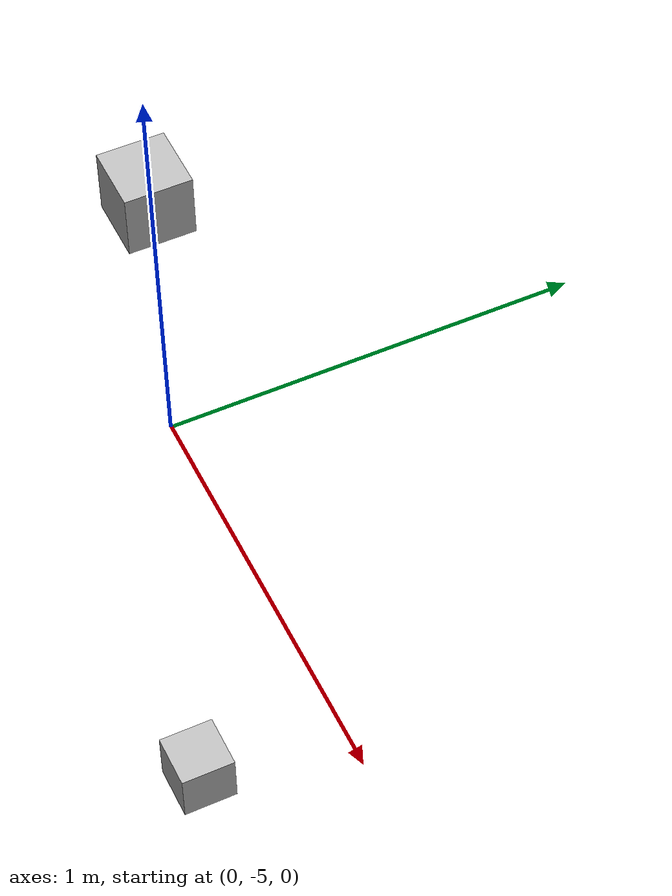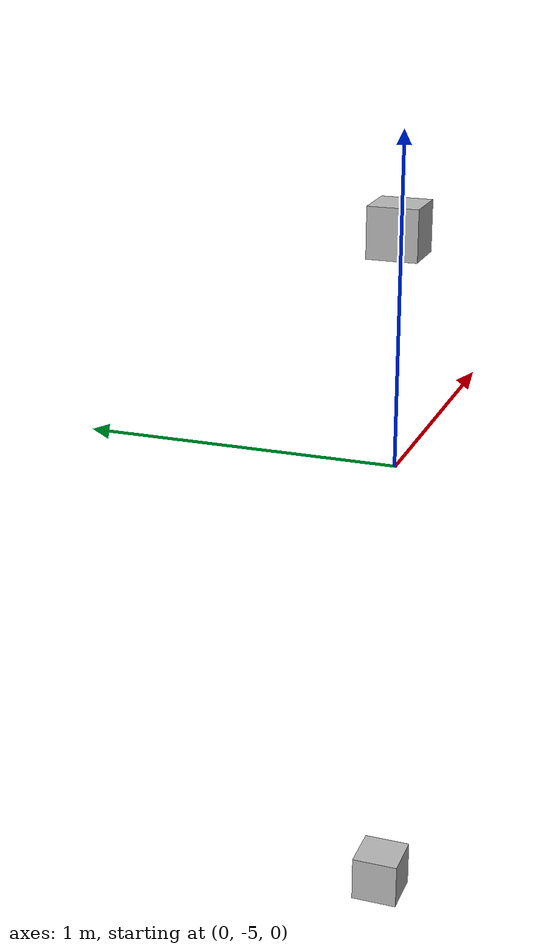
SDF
<sdf version="1.7">
 <world name="default">
  <model name="orthogonal_747_2.000.15_TS">
   <static>1</static>
   <link name="u_link_0_0_3">
    <inertial>
     <mass>1</mass>
     <inertia>
      <ixx>0.166667</ixx>
      <ixy>0</ixy>
      <ixz>0</ixz>
      <iyy>0.166667</iyy>
      <iyz>0</iyz>
      <izz>0.166667</izz>
     </inertia>
    </inertial>
    <pose>6.45 0 1.075 0 -0 0</pose>
    <visual name="visual_0">
     <laser_retro>78</laser_retro>
     <geometry><box><size>0.15 1e-06 0.15</size></box></geometry>
     <material>
      <script><name>Gazebo/Grey</name><uri>file://media/materials/scripts/gazebo.material</uri></script>
      <shader type="pixel"><normal_map>__default__</normal_map></shader>
      <ambient>0.678 0.498 0.659 1</ambient>
      <diffuse>0.7 0.7 0.7 1</diffuse>
      <specular>0.01 0.01 0.01 1</specular>
      <emissive>0 0 0 1</emissive>
     </material>
     <pose>0 -0.075 0 0 -0 0</pose>
     <transparency>1</transparency>
    </visual>
    <visual name="visual_1">
     <laser_retro>79</laser_retro>
     <geometry><box><size>0.15 1e-06 0.15</size></box></geometry>
     <material>
      <script><name>Gazebo/Grey</name><uri>file://media/materials/scripts/gazebo.material</uri></script>
      <shader type="pixel"><normal_map>__default__</normal_map></shader>
      <ambient>0.447 0.624 0.812 1</ambient>
      <diffuse>0.7 0.7 0.7 1</diffuse>
      <specular>0.01 0.01 0.01 1</specular>
      <emissive>0 0 0 1</emissive>
     </material>
     <pose>0 0.075 0 0 -0 0</pose>
     <transparency>1</transparency>
    </visual>
    <visual name="visual_2">
     <laser_retro>80</laser_retro>
     <geometry><box><size>0.15 0.15 1e-06</size></box></geometry>
     <material>
      <script><name>Gazebo/Grey</name><uri>file://media/materials/scripts/gazebo.material</uri></script>
      <shader type="pixel"><normal_map>__default__</normal_map></shader>
      <ambient>0.988 0.686 0.243 1</ambient>
      <diffuse>0.7 0.7 0.7 1</diffuse>
      <specular>0.01 0.01 0.01 1</specular>
      <emissive>0 0 0 1</emissive>
     </material>
     <pose>0 0 -0.075 0 -0 0</pose>
     <transparency>1</transparency>
    </visual>
    <visual name="visual_3">
     <laser_retro>81</laser_retro>
     <geometry><box><size>1e-06 0.15 0.15</size></box></geometry>
     <material>
      <script><name>Gazebo/Grey</name><uri>file://media/materials/scripts/gazebo.material</uri></script>
      <shader type="pixel"><normal_map>__default__</normal_map></shader>
      <ambient>0.988 0.914 0.31 1</ambient>
      <diffuse>0.7 0.7 0.7 1</diffuse>
      <specular>0.01 0.01 0.01 1</specular>
      <emissive>0 0 0 1</emissive>
     </material>
     <pose>0.075 0 0 0 -0 0</pose>
     <transparency>1</transparency>
    </visual>
    <visual name="visual_4">
     <laser_retro>82</laser_retro>
     <geometry><box><size>0.15 0.15 1e-06</size></box></geometry>
     <material>
      <script><name>Gazebo/Grey</name><uri>file://media/materials/scripts/gazebo.material</uri></script>
      <shader type="pixel"><normal_map>__default__</normal_map></shader>
      <ambient>0.937 0.161 0.161 1</ambient>
      <diffuse>0.7 0.7 0.7 1</diffuse>
      <specular>0.01 0.01 0.01 1</specular>
      <emissive>0 0 0 1</emissive>
     </material>
     <pose>0 0 0.075 0 -0 0</pose>
     <transparency>1</transparency>
    </visual>
    <visual name="visual_5">
     <laser_retro>83</laser_retro>
     <geometry><box><size>1e-06 0.15 0.15</size></box></geometry>
     <material>
      <script><name>Gazebo/Grey</name><uri>file://media/materials/scripts/gazebo.material</uri></script>
      <shader type="pixel"><normal_map>__default__</normal_map></shader>
      <ambient>0.541 0.886 0.204 1</ambient>
      <diffuse>0.7 0.7 0.7 1</diffuse>
      <specular>0.01 0.01 0.01 1</specular>
      <emissive>0 0 0 1</emissive>
     </material>
     <pose>-0.075 0 0 0 -0 0</pose>
     <transparency>1</transparency>
    </visual>
    <visual name="visual_texture">
     <geometry><box><size>0.149985 0.149985 0.149985</size></box></geometry>
     <material>
      <script>
       <uri>model://BASE_MODELS/simple_block_v2_textured/materials/scripts</uri>
       <uri>model://BASE_MODELS/simple_block_v2_textured/materials/textures</uri>
       <name>metal</name>
      </script>
     </material>
     <laser_retro>84</laser_retro>
    </visual>
    <collision name="collision">
     <geometry><box><size>0.15 0.15 0.15</size></box></geometry>
     <surface>
      <friction>
       <ode><mu>1</mu><mu2>1</mu2><fdir1>0 0 0</fdir1><slip1>0</slip1><slip2>0</slip2></ode>
       <torsional>
        <coefficient>1</coefficient>
        <patch_radius>0</patch_radius>
        <surface_radius>0</surface_radius>
        <use_patch_radius>1</use_patch_radius>
        <ode><slip>0</slip></ode>
       </torsional>
      </friction>
      <bounce><restitution_coefficient>0</restitution_coefficient><threshold>1e+06</threshold></bounce>
      <contact>
       <collide_without_contact>0</collide_without_contact>
       <collide_without_contact_bitmask>1</collide_without_contact_bitmask>
       <collide_bitmask>1</collide_bitmask>
       <ode>
        <soft_cfm>0</soft_cfm>
        <soft_erp>0.2</soft_erp>
        <kp>1e+13</kp>
        <kd>1</kd>
        <max_vel>0.01</max_vel>
        <min_depth>0</min_depth>
       </ode>
       <bullet>
        <split_impulse>1</split_impulse>
        <split_impulse_penetration_threshold>-0.01</split_impulse_penetration_threshold>
        <soft_cfm>0</soft_cfm>
        <soft_erp>0.2</soft_erp>
        <kp>1e+13</kp>
        <kd>1</kd>
       </bullet>
      </contact>
     </surface>
    </collision>
   </link>
   <link name="u_link_1_0_3">
    <inertial>
     <mass>1</mass>
     <inertia>
      <ixx>0.166667</ixx>
      <ixy>0</ixy>
      <ixz>0</ixz>
      <iyy>0.166667</iyy>
      <iyz>0</iyz>
      <izz>0.166667</izz>
     </inertia>
    </inertial>
    <pose>6.45 0 3.225 0 -0 0</pose>
    <visual name="visual_0">
     <laser_retro>848</laser_retro>
     <geometry><box><size>0.15 1e-06 0.15</size></box></geometry>
     <material>
      <script><name>Gazebo/Grey</name><uri>file://media/materials/scripts/gazebo.material</uri></script>
      <shader type="pixel"><normal_map>__default__</normal_map></shader>
      <ambient>0.678 0.498 0.659 1</ambient>
      <diffuse>0.7 0.7 0.7 1</diffuse>
      <specular>0.01 0.01 0.01 1</specular>
      <emissive>0 0 0 1</emissive>
     </material>
     <pose>0 -0.075 0 0 -0 0</pose>
     <transparency>1</transparency>
    </visual>
    <visual name="visual_1">
     <laser_retro>849</laser_retro>
     <geometry><box><size>0.15 1e-06 0.15</size></box></geometry>
     <material>
      <script><name>Gazebo/Grey</name><uri>file://media/materials/scripts/gazebo.material</uri></script>
      <shader type="pixel"><normal_map>__default__</normal_map></shader>
      <ambient>0.447 0.624 0.812 1</ambient>
      <diffuse>0.7 0.7 0.7 1</diffuse>
      <specular>0.01 0.01 0.01 1</specular>
      <emissive>0 0 0 1</emissive>
     </material>
     <pose>0 0.075 0 0 -0 0</pose>
     <transparency>1</transparency>
    </visual>
    <visual name="visual_2">
     <laser_retro>850</laser_retro>
     <geometry><box><size>0.15 0.15 1e-06</size></box></geometry>
     <material>
      <script><name>Gazebo/Grey</name><uri>file://media/materials/scripts/gazebo.material</uri></script>
      <shader type="pixel"><normal_map>__default__</normal_map></shader>
      <ambient>0.988 0.686 0.243 1</ambient>
      <diffuse>0.7 0.7 0.7 1</diffuse>
      <specular>0.01 0.01 0.01 1</specular>
      <emissive>0 0 0 1</emissive>
     </material>
     <pose>0 0 -0.075 0 -0 0</pose>
     <transparency>1</transparency>
    </visual>
    <visual name="visual_3">
     <laser_retro>851</laser_retro>
     <geometry><box><size>1e-06 0.15 0.15</size></box></geometry>
     <material>
      <script><name>Gazebo/Grey</name><uri>file://media/materials/scripts/gazebo.material</uri></script>
      <shader type="pixel"><normal_map>__default__</normal_map></shader>
      <ambient>0.988 0.914 0.31 1</ambient>
      <diffuse>0.7 0.7 0.7 1</diffuse>
      <specular>0.01 0.01 0.01 1</specular>
      <emissive>0 0 0 1</emissive>
     </material>
     <pose>0.075 0 0 0 -0 0</pose>
     <transparency>1</transparency>
    </visual>
    <visual name="visual_4">
     <laser_retro>852</laser_retro>
     <geometry><box><size>0.15 0.15 1e-06</size></box></geometry>
     <material>
      <script><name>Gazebo/Grey</name><uri>file://media/materials/scripts/gazebo.material</uri></script>
      <shader type="pixel"><normal_map>__default__</normal_map></shader>
      <ambient>0.937 0.161 0.161 1</ambient>
      <diffuse>0.7 0.7 0.7 1</diffuse>
      <specular>0.01 0.01 0.01 1</specular>
      <emissive>0 0 0 1</emissive>
     </material>
     <pose>0 0 0.075 0 -0 0</pose>
     <transparency>1</transparency>
    </visual>
    <visual name="visual_5">
     <laser_retro>853</laser_retro>
     <geometry><box><size>1e-06 0.15 0.15</size></box></geometry>
     <material>
      <script><name>Gazebo/Grey</name><uri>file://media/materials/scripts/gazebo.material</uri></script>
      <shader type="pixel"><normal_map>__default__</normal_map></shader>
      <ambient>0.541 0.886 0.204 1</ambient>
      <diffuse>0.7 0.7 0.7 1</diffuse>
      <specular>0.01 0.01 0.01 1</specular>
      <emissive>0 0 0 1</emissive>
     </material>
     <pose>-0.075 0 0 0 -0 0</pose>
     <transparency>1</transparency>
    </visual>
    <visual name="visual_texture">
     <geometry><box><size>0.149985 0.149985 0.149985</size></box></geometry>
     <material>
      <script>
       <uri>model://BASE_MODELS/simple_block_v2_textured/materials/scripts</uri>
       <uri>model://BASE_MODELS/simple_block_v2_textured/materials/textures</uri>
       <name>metal</name>
      </script>
     </material>
     <laser_retro>854</laser_retro>
    </visual>
    <collision name="collision">
     <geometry><box><size>0.15 0.15 0.15</size></box></geometry>
     <surface>
      <friction>
       <ode><mu>1</mu><mu2>1</mu2><fdir1>0 0 0</fdir1><slip1>0</slip1><slip2>0</slip2></ode>
       <torsional>
        <coefficient>1</coefficient>
        <patch_radius>0</patch_radius>
        <surface_radius>0</surface_radius>
        <use_patch_radius>1</use_patch_radius>
        <ode><slip>0</slip></ode>
       </torsional>
      </friction>
      <bounce><restitution_coefficient>0</restitution_coefficient><threshold>1e+06</threshold></bounce>
      <contact>
       <collide_without_contact>0</collide_without_contact>
       <collide_without_contact_bitmask>1</collide_without_contact_bitmask>
       <collide_bitmask>1</collide_bitmask>
       <ode>
        <soft_cfm>0</soft_cfm>
        <soft_erp>0.2</soft_erp>
        <kp>1e+13</kp>
        <kd>1</kd>
        <max_vel>0.01</max_vel>
        <min_depth>0</min_depth>
       </ode>
       <bullet>
        <split_impulse>1</split_impulse>
        <split_impulse_penetration_threshold>-0.01</split_impulse_penetration_threshold>
        <soft_cfm>0</soft_cfm>
        <soft_erp>0.2</soft_erp>
        <kp>1e+13</kp>
        <kd>1</kd>
       </bullet>
      </contact>
     </surface>
    </collision>
   </link>
   <pose>-6.47624 -5 -2.5 0 -0 0</pose>
  </model>
 </world>
</sdf>
